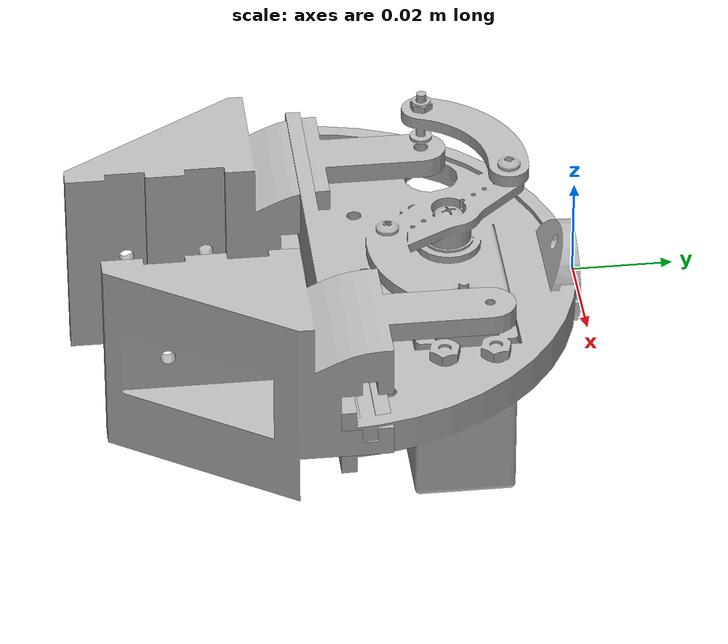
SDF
<?xml version="1.0"?>
<sdf version='1.7'>
  <model name='gripper1'>
    <link name='base_link'>
      <inertial>
        <pose>0.001654 -0.029913 -0.001386 0 -0 0</pose>
        <mass>0.01</mass>
        <inertia>
          <ixx>4.11249e-05</ixx>
          <ixy>8.0148e-07</ixy>
          <ixz>2.68911e-08</ixz>
          <iyy>0.000111475</iyy>
          <iyz>-6.74462e-07</iyz>
          <izz>0.000142498</izz>
        </inertia>
      </inertial>
      <collision name='base_link_collision'>
        <pose>0 0 0 0 -0 0</pose>
        <geometry>
          <mesh>
            <scale>1 1 1</scale>
            <uri>model://gripper1/meshes/base_link.STL</uri>
          </mesh>
        </geometry>
      </collision>
      <visual name='base_link_visual'>
        <pose>0 0 0 0 -0 0</pose>
        <geometry>
          <mesh>
            <scale>1 1 1</scale>
            <uri>model://gripper1/meshes/base_link.STL</uri>
          </mesh>
        </geometry>
      </visual>
    </link>
    <joint name='left_joint' type='prismatic'>
      <pose relative_to='base_link'>-0.051103 -0.052 -0.0065 0 -0 0</pose>
      <parent>base_link</parent>
      <child>left_link</child>
      <axis>
        <xyz>-1 0 0</xyz>
        <limit>
          <lower>-0.015</lower>
          <upper>0.01</upper>
          <effort>50</effort>
          <velocity>0.1</velocity>
        </limit>
        <dynamics>
          <spring_reference>0</spring_reference>
          <spring_stiffness>0</spring_stiffness>
      	  <damping>0</damping>
      	  <friction>0.1</friction>
        </dynamics>
      </axis>
    </joint>
    <link name='left_link'>
      <pose relative_to='left_joint'>0 0 0 0 -0 0</pose>
      <inertial>
        <pose>0.026892 -0.01407 0.008606 0 -0 0</pose>
        <mass>0.01</mass>
        <inertia>
          <ixx>9.6439e-05</ixx>
          <ixy>3.46376e-06</ixy>
          <ixz>3.80734e-07</ixz>
          <iyy>4.79336e-05</iyy>
          <iyz>-8.70306e-06</iyz>
          <izz>7.99202e-05</izz>
        </inertia>
      </inertial>
      <collision name='left_link_collision'>
        <pose>0 0 0 0 -0 0</pose>
        <geometry>
          <mesh>
            <scale>1 1 1</scale>
            <uri>model://gripper1/meshes/left_link.STL</uri>
          </mesh>
        </geometry>
          <surface>
            <friction>
              <ode>
                <mu>30</mu>
                <mu2>30</mu2>
              </ode>
            </friction>
          </surface>
      </collision>
      <visual name='left_link_visual'>
        <pose>0 0 0 0 -0 0</pose>
        <geometry>
          <mesh>
            <scale>1 1 1</scale>
            <uri>model://gripper1/meshes/left_link.STL</uri>
          </mesh>
        </geometry>
      </visual>
    </link>
    <joint name='right_joint' type='prismatic'>
      <pose relative_to='base_link'>0.052897 -0.052 0.0075 3.14159 -0 3.14159</pose>
      <parent>base_link</parent>
      <child>right_link</child>
      <axis>
        <xyz>1 0 0</xyz>
        <limit>
          <lower>-0.01</lower>
          <upper>0.015</upper>
          <effort>50</effort>
          <velocity>0.1</velocity>
        </limit>
        <dynamics>
          <spring_reference>0</spring_reference>
          <spring_stiffness>0</spring_stiffness>
      	  <damping>0</damping>
      	  <friction>0.1</friction>
        </dynamics>
      </axis>
    </joint>
    <link name='right_link'>
      <pose relative_to='right_joint'>0 0 0 0 -0 0</pose>
      <inertial>
        <pose>0.025334 -0.016463 0.005554 0 -0 0</pose>
        <mass>0.01</mass>
        <inertia>
          <ixx>6.82429e-05</ixx>
          <ixy>8.57233e-06</ixy>
          <ixz>-7.94682e-07</ixz>
          <iyy>3.63588e-05</iyy>
          <iyz>5.33025e-06</iyz>
          <izz>5.21112e-05</izz>
        </inertia>
      </inertial>
      <collision name='right_link_collision'>
        <pose>0 0 0 0 -0 0</pose>
        <geometry>
          <mesh>
            <scale>1 1 1</scale>
            <uri>model://gripper1/meshes/right_link.STL</uri>
          </mesh>
        </geometry>
      </collision>
      <visual name='right_link_visual'>
        <pose>0 0 0 0 -0 0</pose>
        <geometry>
          <mesh>
            <scale>1 1 1</scale>
            <uri>model://gripper1/meshes/right_link.STL</uri>
          </mesh>
        </geometry>
          <surface>
            <friction>
              <ode>
                <mu>30</mu>
                <mu2>30</mu2>
              </ode>
            </friction>
          </surface>
      </visual>
    </link>
    <!-- 在gazebo仿真模型文件中添加： -->
      <plugin name="p3d_base_controller" filename="libgazebo_ros_p3d.so">
        <alwaysOn>true</alwaysOn>
        <updateRate>50.0</updateRate>
        <bodyName>right_link</bodyName>
        <topicName>gripper_right_link_pose_gt</topicName>
        <gaussianNoise>0.0</gaussianNoise>
        <frameName>world</frameName>
        <xyzOffset>0 0 0</xyzOffset>
        <rpyOffset>0 0 0</rpyOffset>
      </plugin>
      <plugin name="gazebo_grasp_fix" filename="libgazebo_grasp_fix.so">
        <arm>
          <arm_name>ur5_gripper</arm_name>
          <palm_link>base_link</palm_link>
          <gripper_link>left_link</gripper_link>
          <gripper_link>right_link</gripper_link>
        </arm>
        <forces_angle_tolerance>150</forces_angle_tolerance>
        <update_rate>130</update_rate>
        <grip_count_threshold>2</grip_count_threshold>
        <max_grip_count>8</max_grip_count>
        <release_tolerance>0.01</release_tolerance>
        <disable_collisions_on_attach>true</disable_collisions_on_attach>
        <contact_topic>__default_topic__</contact_topic>
     </plugin>

  <plugin name="gripper_control1_1" filename="libgripper_plugin1_1.so"/>
  <plugin name="gripper_control1_2" filename="libgripper_plugin1_2.so"/>
  </model>
</sdf>
